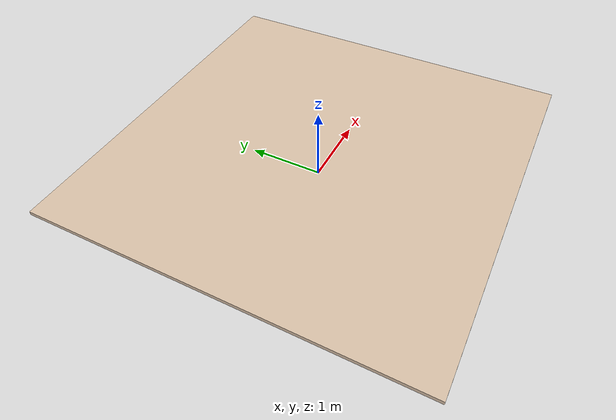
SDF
<?xml version="1.0"?>
<sdf version="1.7">
  <model name="table_top">
    <link name="table_top_link">
      <visual name="visual">
        <pose>0 0 0.445 0 0 0</pose>
        <geometry>
          <box>
            <size>5. 5. 0.05</size>
          </box>
        </geometry>
        <material>
         <diffuse>0.9 0.8 0.7 1.0</diffuse>
        </material>
      </visual>
      <collision name="table_collision">
        <pose>0 0 0.445  0 0 0</pose>
        <geometry>
          <box>
            <size>5. 5. 0.05</size>
          </box>
        </geometry>
      </collision>
    </link>
    <frame name="table_top_center">
      <pose relative_to="table_top_link">0 0 0.47 0 0 0</pose>
    </frame>
  </model>
</sdf>
